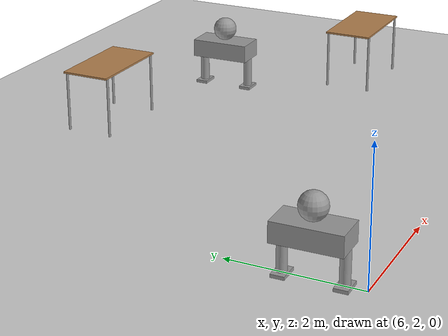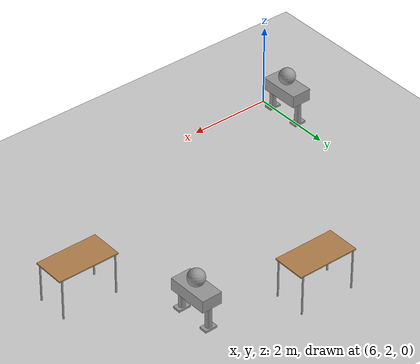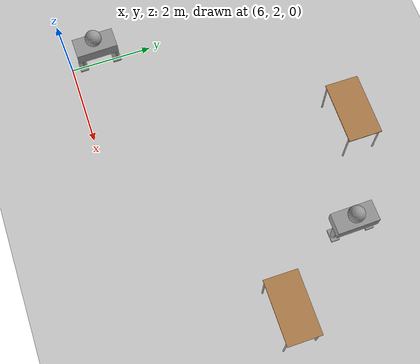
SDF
<sdf version="1.6">
 <world name="default">
  <model name="ground_plane">
   <static>1</static>
   <link name="link">
    <collision name="collision">
     <geometry><plane><normal>0 0 1</normal><size>100 100</size></plane></geometry>
     <surface>
      <contact><collide_bitmask>65535</collide_bitmask></contact>
      <friction><ode><mu>100</mu><mu2>50</mu2></ode></friction>
     </surface>
    </collision>
    <visual name="visual">
     <cast_shadows>0</cast_shadows>
     <geometry><plane><normal>0 0 1</normal><size>100 100</size></plane></geometry>
     <material>
      <script><uri>file://media/materials/scripts/gazebo.material</uri><name>Gazebo/Grey</name></script>
     </material>
    </visual>
   </link>
  </model>
  <model name="robot">
   <link name="link_0">
    <pose>-0.425 -0.010043 -0.1 0 -0 0</pose>
    <inertial>
     <mass>1</mass>
     <inertia><ixx>0.145833</ixx><ixy>0</ixy><ixz>0</ixz><iyy>0.145833</iyy><iyz>0</iyz><izz>0.125</izz></inertia>
    </inertial>
    <visual name="visual">
     <geometry><cylinder><radius>0.075</radius><length>0.5</length></cylinder></geometry>
     <material>
      <lighting>1</lighting>
      <script><uri>file://media/materials/scripts/gazebo.material</uri><name>Gazebo/Grey</name></script>
      <shader type="pixel"><normal_map>__default__</normal_map></shader>
      <ambient>0.3 0.3 0.3 1</ambient>
      <diffuse>0.7 0.7 0.7 1</diffuse>
      <specular>0.01 0.01 0.01 1</specular>
      <emissive>1 0.2 0.3 1</emissive>
     </material>
    </visual>
    <collision name="collision">
     <geometry><cylinder><radius>0.075</radius><length>0.5</length></cylinder></geometry>
     <surface>
      <friction>
       <ode><mu>1</mu><mu2>1</mu2><fdir1>0 0 0</fdir1><slip1>0</slip1><slip2>0</slip2></ode>
       <torsional>
        <coefficient>1</coefficient>
        <patch_radius>0</patch_radius>
        <surface_radius>0</surface_radius>
        <use_patch_radius>1</use_patch_radius>
        <ode><slip>0</slip></ode>
       </torsional>
      </friction>
      <bounce><restitution_coefficient>0</restitution_coefficient><threshold>1e+06</threshold></bounce>
      <contact>
       <collide_without_contact>0</collide_without_contact>
       <collide_without_contact_bitmask>1</collide_without_contact_bitmask>
       <collide_bitmask>1</collide_bitmask>
       <ode>
        <soft_cfm>0</soft_cfm>
        <soft_erp>0.2</soft_erp>
        <kp>1e+13</kp>
        <kd>1</kd>
        <max_vel>0.01</max_vel>
        <min_depth>0</min_depth>
       </ode>
       <bullet>
        <split_impulse>1</split_impulse>
        <split_impulse_penetration_threshold>-0.01</split_impulse_penetration_threshold>
        <soft_cfm>0</soft_cfm>
        <soft_erp>0.2</soft_erp>
        <kp>1e+13</kp>
        <kd>1</kd>
       </bullet>
      </contact>
     </surface>
    </collision>
   </link>
   <link name="link_0_clone">
    <pose>0.425 -0.012415 -0.1 0 -0 0</pose>
    <inertial>
     <mass>1</mass>
     <inertia><ixx>0.145833</ixx><ixy>0</ixy><ixz>0</ixz><iyy>0.145833</iyy><iyz>0</iyz><izz>0.125</izz></inertia>
    </inertial>
    <visual name="visual">
     <geometry><cylinder><radius>0.075</radius><length>0.5</length></cylinder></geometry>
     <material>
      <lighting>1</lighting>
      <script><uri>file://media/materials/scripts/gazebo.material</uri><name>Gazebo/Grey</name></script>
      <shader type="pixel"><normal_map>__default__</normal_map></shader>
      <ambient>0.3 0.3 0.3 1</ambient>
      <diffuse>0.7 0.7 0.7 1</diffuse>
      <specular>0.01 0.01 0.01 1</specular>
      <emissive>1 0.2 0.3 1</emissive>
     </material>
    </visual>
    <collision name="collision">
     <geometry><cylinder><radius>0.075</radius><length>0.5</length></cylinder></geometry>
     <surface>
      <friction>
       <ode><mu>1</mu><mu2>1</mu2><fdir1>0 0 0</fdir1><slip1>0</slip1><slip2>0</slip2></ode>
       <torsional>
        <coefficient>1</coefficient>
        <patch_radius>0</patch_radius>
        <surface_radius>0</surface_radius>
        <use_patch_radius>1</use_patch_radius>
        <ode><slip>0</slip></ode>
       </torsional>
      </friction>
      <bounce><restitution_coefficient>0</restitution_coefficient><threshold>1e+06</threshold></bounce>
      <contact>
       <collide_without_contact>0</collide_without_contact>
       <collide_without_contact_bitmask>1</collide_without_contact_bitmask>
       <collide_bitmask>1</collide_bitmask>
       <ode>
        <soft_cfm>0</soft_cfm>
        <soft_erp>0.2</soft_erp>
        <kp>1e+13</kp>
        <kd>1</kd>
        <max_vel>0.01</max_vel>
        <min_depth>0</min_depth>
       </ode>
       <bullet>
        <split_impulse>1</split_impulse>
        <split_impulse_penetration_threshold>-0.01</split_impulse_penetration_threshold>
        <soft_cfm>0</soft_cfm>
        <soft_erp>0.2</soft_erp>
        <kp>1e+13</kp>
        <kd>1</kd>
       </bullet>
      </contact>
     </surface>
    </collision>
   </link>
   <link name="link_1">
    <pose>-0.425 -0.010043 -0.375 0 -0 0</pose>
    <inertial>
     <mass>1</mass>
     <inertia>
      <ixx>0.166667</ixx>
      <ixy>0</ixy>
      <ixz>0</ixz>
      <iyy>0.166667</iyy>
      <iyz>0</iyz>
      <izz>0.166667</izz>
     </inertia>
    </inertial>
    <visual name="visual">
     <geometry><box><size>0.2 0.3 0.05</size></box></geometry>
     <material>
      <lighting>1</lighting>
      <script><uri>file://media/materials/scripts/gazebo.material</uri><name>Gazebo/Grey</name></script>
      <shader type="pixel"><normal_map>__default__</normal_map></shader>
      <ambient>0.3 0.3 0.3 1</ambient>
      <diffuse>0.7 0.7 0.7 1</diffuse>
      <specular>0.01 0.01 0.01 1</specular>
      <emissive>0.2 1 0.2 1</emissive>
     </material>
    </visual>
    <collision name="collision">
     <geometry><box><size>0.2 0.3 0.05</size></box></geometry>
     <surface>
      <friction>
       <ode><mu>1</mu><mu2>1</mu2><fdir1>0 0 0</fdir1><slip1>0</slip1><slip2>0</slip2></ode>
       <torsional>
        <coefficient>1</coefficient>
        <patch_radius>0</patch_radius>
        <surface_radius>0</surface_radius>
        <use_patch_radius>1</use_patch_radius>
        <ode><slip>0</slip></ode>
       </torsional>
      </friction>
      <bounce><restitution_coefficient>0</restitution_coefficient><threshold>1e+06</threshold></bounce>
      <contact>
       <collide_without_contact>0</collide_without_contact>
       <collide_without_contact_bitmask>1</collide_without_contact_bitmask>
       <collide_bitmask>1</collide_bitmask>
       <ode>
        <soft_cfm>0</soft_cfm>
        <soft_erp>0.2</soft_erp>
        <kp>1e+13</kp>
        <kd>1</kd>
        <max_vel>0.01</max_vel>
        <min_depth>0</min_depth>
       </ode>
       <bullet>
        <split_impulse>1</split_impulse>
        <split_impulse_penetration_threshold>-0.01</split_impulse_penetration_threshold>
        <soft_cfm>0</soft_cfm>
        <soft_erp>0.2</soft_erp>
        <kp>1e+13</kp>
        <kd>1</kd>
       </bullet>
      </contact>
     </surface>
    </collision>
   </link>
   <link name="link_1_clone">
    <pose>0.425 -0.012415 -0.375 0 -0 0</pose>
    <inertial>
     <mass>1</mass>
     <inertia>
      <ixx>0.166667</ixx>
      <ixy>0</ixy>
      <ixz>0</ixz>
      <iyy>0.166667</iyy>
      <iyz>0</iyz>
      <izz>0.166667</izz>
     </inertia>
    </inertial>
    <visual name="visual">
     <geometry><box><size>0.2 0.3 0.05</size></box></geometry>
     <material>
      <lighting>1</lighting>
      <script><uri>file://media/materials/scripts/gazebo.material</uri><name>Gazebo/Grey</name></script>
      <shader type="pixel"><normal_map>__default__</normal_map></shader>
      <ambient>0.3 0.3 0.3 1</ambient>
      <diffuse>0.7 0.7 0.7 1</diffuse>
      <specular>0.01 0.01 0.01 1</specular>
      <emissive>0.2 1 0.2 1</emissive>
     </material>
    </visual>
    <collision name="collision">
     <geometry><box><size>0.2 0.3 0.05</size></box></geometry>
     <surface>
      <friction>
       <ode><mu>1</mu><mu2>1</mu2><fdir1>0 0 0</fdir1><slip1>0</slip1><slip2>0</slip2></ode>
       <torsional>
        <coefficient>1</coefficient>
        <patch_radius>0</patch_radius>
        <surface_radius>0</surface_radius>
        <use_patch_radius>1</use_patch_radius>
        <ode><slip>0</slip></ode>
       </torsional>
      </friction>
      <bounce><restitution_coefficient>0</restitution_coefficient><threshold>1e+06</threshold></bounce>
      <contact>
       <collide_without_contact>0</collide_without_contact>
       <collide_without_contact_bitmask>1</collide_without_contact_bitmask>
       <collide_bitmask>1</collide_bitmask>
       <ode>
        <soft_cfm>0</soft_cfm>
        <soft_erp>0.2</soft_erp>
        <kp>1e+13</kp>
        <kd>1</kd>
        <max_vel>0.01</max_vel>
        <min_depth>0</min_depth>
       </ode>
       <bullet>
        <split_impulse>1</split_impulse>
        <split_impulse_penetration_threshold>-0.01</split_impulse_penetration_threshold>
        <soft_cfm>0</soft_cfm>
        <soft_erp>0.2</soft_erp>
        <kp>1e+13</kp>
        <kd>1</kd>
       </bullet>
      </contact>
     </surface>
    </collision>
   </link>
   <link name="link_2">
    <pose>0 0.022457 0.3 0 -0 0</pose>
    <inertial>
     <mass>1</mass>
     <inertia>
      <ixx>0.166667</ixx>
      <ixy>0</ixy>
      <ixz>0</ixz>
      <iyy>0.166667</iyy>
      <iyz>0</iyz>
      <izz>0.166667</izz>
     </inertia>
    </inertial>
    <visual name="visual">
     <geometry><box><size>1 0.5 0.3</size></box></geometry>
     <material>
      <lighting>1</lighting>
      <script><uri>file://media/materials/scripts/gazebo.material</uri><name>Gazebo/Grey</name></script>
      <shader type="pixel"><normal_map>__default__</normal_map></shader>
      <ambient>0.3 0.3 0.3 1</ambient>
      <diffuse>0.7 0.7 0.7 1</diffuse>
      <specular>0.01 0.01 0.01 1</specular>
      <emissive>0.2 1 0.2 1</emissive>
     </material>
    </visual>
    <collision name="collision">
     <geometry><box><size>1 0.5 0.3</size></box></geometry>
     <surface>
      <friction>
       <ode><mu>1</mu><mu2>1</mu2><fdir1>0 0 0</fdir1><slip1>0</slip1><slip2>0</slip2></ode>
       <torsional>
        <coefficient>1</coefficient>
        <patch_radius>0</patch_radius>
        <surface_radius>0</surface_radius>
        <use_patch_radius>1</use_patch_radius>
        <ode><slip>0</slip></ode>
       </torsional>
      </friction>
      <bounce><restitution_coefficient>0</restitution_coefficient><threshold>1e+06</threshold></bounce>
      <contact>
       <collide_without_contact>0</collide_without_contact>
       <collide_without_contact_bitmask>1</collide_without_contact_bitmask>
       <collide_bitmask>1</collide_bitmask>
       <ode>
        <soft_cfm>0</soft_cfm>
        <soft_erp>0.2</soft_erp>
        <kp>1e+13</kp>
        <kd>1</kd>
        <max_vel>0.01</max_vel>
        <min_depth>0</min_depth>
       </ode>
       <bullet>
        <split_impulse>1</split_impulse>
        <split_impulse_penetration_threshold>-0.01</split_impulse_penetration_threshold>
        <soft_cfm>0</soft_cfm>
        <soft_erp>0.2</soft_erp>
        <kp>1e+13</kp>
        <kd>1</kd>
       </bullet>
      </contact>
     </surface>
    </collision>
   </link>
   <link name="link_3">
    <pose>-0 0.022457 0.65 0 -0 0</pose>
    <inertial>
     <mass>1</mass>
     <inertia><ixx>0.1</ixx><ixy>0</ixy><ixz>0</ixz><iyy>0.1</iyy><iyz>0</iyz><izz>0.1</izz></inertia>
    </inertial>
    <visual name="visual">
     <geometry><sphere><radius>0.2</radius></sphere></geometry>
     <material>
      <lighting>1</lighting>
      <script><uri>file://media/materials/scripts/gazebo.material</uri><name>Gazebo/Grey</name></script>
      <shader type="pixel"><normal_map>__default__</normal_map></shader>
      <ambient>0.3 0.3 0.3 1</ambient>
      <diffuse>0.7 0.7 0.7 1</diffuse>
      <specular>0.01 0.01 0.01 1</specular>
      <emissive>1 0.2 0.3 1</emissive>
     </material>
    </visual>
    <collision name="collision">
     <geometry><sphere><radius>0.2</radius></sphere></geometry>
     <surface>
      <friction>
       <ode><mu>1</mu><mu2>1</mu2><fdir1>0 0 0</fdir1><slip1>0</slip1><slip2>0</slip2></ode>
       <torsional>
        <coefficient>1</coefficient>
        <patch_radius>0</patch_radius>
        <surface_radius>0</surface_radius>
        <use_patch_radius>1</use_patch_radius>
        <ode><slip>0</slip></ode>
       </torsional>
      </friction>
      <bounce><restitution_coefficient>0</restitution_coefficient><threshold>1e+06</threshold></bounce>
      <contact>
       <collide_without_contact>0</collide_without_contact>
       <collide_without_contact_bitmask>1</collide_without_contact_bitmask>
       <collide_bitmask>1</collide_bitmask>
       <ode>
        <soft_cfm>0</soft_cfm>
        <soft_erp>0.2</soft_erp>
        <kp>1e+13</kp>
        <kd>1</kd>
        <max_vel>0.01</max_vel>
        <min_depth>0</min_depth>
       </ode>
       <bullet>
        <split_impulse>1</split_impulse>
        <split_impulse_penetration_threshold>-0.01</split_impulse_penetration_threshold>
        <soft_cfm>0</soft_cfm>
        <soft_erp>0.2</soft_erp>
        <kp>1e+13</kp>
        <kd>1</kd>
       </bullet>
      </contact>
     </surface>
    </collision>
   </link>
   <joint name="link_0_JOINT_2" type="fixed">
    <parent>link_0</parent>
    <child>link_2</child>
    <physics>
     <ode><limit><cfm>0</cfm><erp>0.2</erp></limit><suspension><cfm>0</cfm><erp>0.2</erp></suspension></ode>
    </physics>
   </joint>
   <joint name="link_0_clone_JOINT_6" type="revolute">
    <parent>link_0_clone</parent>
    <child>link_1_clone</child>
    <axis>
     <xyz>1 0 0</xyz>
     <use_parent_model_frame>0</use_parent_model_frame>
     <limit>
      <lower>-1.79769e+308</lower>
      <upper>1.79769e+308</upper>
      <effort>-1</effort>
      <velocity>-1</velocity>
     </limit>
     <dynamics>
      <spring_reference>0</spring_reference>
      <spring_stiffness>0</spring_stiffness>
      <damping>0</damping>
      <friction>0</friction>
     </dynamics>
    </axis>
    <physics>
     <ode><limit><cfm>0</cfm><erp>0.2</erp></limit><suspension><cfm>0</cfm><erp>0.2</erp></suspension></ode>
    </physics>
   </joint>
   <joint name="link_1_JOINT_0" type="fixed">
    <parent>link_1</parent>
    <child>link_0</child>
    <pose>0 0 -0.25 0 -0 0</pose>
    <physics>
     <ode><limit><cfm>0</cfm><erp>0.2</erp></limit><suspension><cfm>0</cfm><erp>0.2</erp></suspension></ode>
    </physics>
   </joint>
   <joint name="link_2_JOINT_5" type="fixed">
    <parent>link_2</parent>
    <child>link_0_clone</child>
    <physics>
     <ode><limit><cfm>0</cfm><erp>0.2</erp></limit><suspension><cfm>0</cfm><erp>0.2</erp></suspension></ode>
    </physics>
   </joint>
   <joint name="link_2_JOINT_7" type="fixed">
    <parent>link_2</parent>
    <child>link_3</child>
    <physics>
     <ode><limit><cfm>0</cfm><erp>0.2</erp></limit><suspension><cfm>0</cfm><erp>0.2</erp></suspension></ode>
    </physics>
   </joint>
   <static>0</static>
   <pose>5.94345 2.71776 0.4 -0 -1e-06 1.58896</pose>
  </model>
  <model name="robot_clone">
   <link name="link_0">
    <pose>-0.425 -0.010043 -0.1 0 -0 0</pose>
    <inertial>
     <mass>1</mass>
     <inertia><ixx>0.145833</ixx><ixy>0</ixy><ixz>0</ixz><iyy>0.145833</iyy><iyz>0</iyz><izz>0.125</izz></inertia>
    </inertial>
    <visual name="visual">
     <geometry><cylinder><radius>0.075</radius><length>0.5</length></cylinder></geometry>
     <material>
      <lighting>1</lighting>
      <script><uri>file://media/materials/scripts/gazebo.material</uri><name>Gazebo/Grey</name></script>
      <shader type="pixel"><normal_map>__default__</normal_map></shader>
      <ambient>0.3 0.3 0.3 1</ambient>
      <diffuse>0.7 0.7 0.7 1</diffuse>
      <specular>0.01 0.01 0.01 1</specular>
      <emissive>1 0.2 0.3 1</emissive>
     </material>
    </visual>
    <collision name="collision">
     <geometry><cylinder><radius>0.075</radius><length>0.5</length></cylinder></geometry>
     <surface>
      <friction>
       <ode><mu>1</mu><mu2>1</mu2><fdir1>0 0 0</fdir1><slip1>0</slip1><slip2>0</slip2></ode>
       <torsional>
        <coefficient>1</coefficient>
        <patch_radius>0</patch_radius>
        <surface_radius>0</surface_radius>
        <use_patch_radius>1</use_patch_radius>
        <ode><slip>0</slip></ode>
       </torsional>
      </friction>
      <bounce><restitution_coefficient>0</restitution_coefficient><threshold>1e+06</threshold></bounce>
      <contact>
       <collide_without_contact>0</collide_without_contact>
       <collide_without_contact_bitmask>1</collide_without_contact_bitmask>
       <collide_bitmask>1</collide_bitmask>
       <ode>
        <soft_cfm>0</soft_cfm>
        <soft_erp>0.2</soft_erp>
        <kp>1e+13</kp>
        <kd>1</kd>
        <max_vel>0.01</max_vel>
        <min_depth>0</min_depth>
       </ode>
       <bullet>
        <split_impulse>1</split_impulse>
        <split_impulse_penetration_threshold>-0.01</split_impulse_penetration_threshold>
        <soft_cfm>0</soft_cfm>
        <soft_erp>0.2</soft_erp>
        <kp>1e+13</kp>
        <kd>1</kd>
       </bullet>
      </contact>
     </surface>
    </collision>
   </link>
   <link name="link_0_clone">
    <pose>0.425 -0.012415 -0.1 0 -0 0</pose>
    <inertial>
     <mass>1</mass>
     <inertia><ixx>0.145833</ixx><ixy>0</ixy><ixz>0</ixz><iyy>0.145833</iyy><iyz>0</iyz><izz>0.125</izz></inertia>
    </inertial>
    <visual name="visual">
     <geometry><cylinder><radius>0.075</radius><length>0.5</length></cylinder></geometry>
     <material>
      <lighting>1</lighting>
      <script><uri>file://media/materials/scripts/gazebo.material</uri><name>Gazebo/Grey</name></script>
      <shader type="pixel"><normal_map>__default__</normal_map></shader>
      <ambient>0.3 0.3 0.3 1</ambient>
      <diffuse>0.7 0.7 0.7 1</diffuse>
      <specular>0.01 0.01 0.01 1</specular>
      <emissive>1 0.2 0.3 1</emissive>
     </material>
    </visual>
    <collision name="collision">
     <geometry><cylinder><radius>0.075</radius><length>0.5</length></cylinder></geometry>
     <surface>
      <friction>
       <ode><mu>1</mu><mu2>1</mu2><fdir1>0 0 0</fdir1><slip1>0</slip1><slip2>0</slip2></ode>
       <torsional>
        <coefficient>1</coefficient>
        <patch_radius>0</patch_radius>
        <surface_radius>0</surface_radius>
        <use_patch_radius>1</use_patch_radius>
        <ode><slip>0</slip></ode>
       </torsional>
      </friction>
      <bounce><restitution_coefficient>0</restitution_coefficient><threshold>1e+06</threshold></bounce>
      <contact>
       <collide_without_contact>0</collide_without_contact>
       <collide_without_contact_bitmask>1</collide_without_contact_bitmask>
       <collide_bitmask>1</collide_bitmask>
       <ode>
        <soft_cfm>0</soft_cfm>
        <soft_erp>0.2</soft_erp>
        <kp>1e+13</kp>
        <kd>1</kd>
        <max_vel>0.01</max_vel>
        <min_depth>0</min_depth>
       </ode>
       <bullet>
        <split_impulse>1</split_impulse>
        <split_impulse_penetration_threshold>-0.01</split_impulse_penetration_threshold>
        <soft_cfm>0</soft_cfm>
        <soft_erp>0.2</soft_erp>
        <kp>1e+13</kp>
        <kd>1</kd>
       </bullet>
      </contact>
     </surface>
    </collision>
   </link>
   <link name="link_1">
    <pose>-0.425 -0.010043 -0.375 0 -0 0</pose>
    <inertial>
     <mass>1</mass>
     <inertia>
      <ixx>0.166667</ixx>
      <ixy>0</ixy>
      <ixz>0</ixz>
      <iyy>0.166667</iyy>
      <iyz>0</iyz>
      <izz>0.166667</izz>
     </inertia>
    </inertial>
    <visual name="visual">
     <geometry><box><size>0.2 0.3 0.05</size></box></geometry>
     <material>
      <lighting>1</lighting>
      <script><uri>file://media/materials/scripts/gazebo.material</uri><name>Gazebo/Grey</name></script>
      <shader type="pixel"><normal_map>__default__</normal_map></shader>
      <ambient>0.3 0.3 0.3 1</ambient>
      <diffuse>0.7 0.7 0.7 1</diffuse>
      <specular>0.01 0.01 0.01 1</specular>
      <emissive>0.2 1 0.2 1</emissive>
     </material>
    </visual>
    <collision name="collision">
     <geometry><box><size>0.2 0.3 0.05</size></box></geometry>
     <surface>
      <friction>
       <ode><mu>1</mu><mu2>1</mu2><fdir1>0 0 0</fdir1><slip1>0</slip1><slip2>0</slip2></ode>
       <torsional>
        <coefficient>1</coefficient>
        <patch_radius>0</patch_radius>
        <surface_radius>0</surface_radius>
        <use_patch_radius>1</use_patch_radius>
        <ode><slip>0</slip></ode>
       </torsional>
      </friction>
      <bounce><restitution_coefficient>0</restitution_coefficient><threshold>1e+06</threshold></bounce>
      <contact>
       <collide_without_contact>0</collide_without_contact>
       <collide_without_contact_bitmask>1</collide_without_contact_bitmask>
       <collide_bitmask>1</collide_bitmask>
       <ode>
        <soft_cfm>0</soft_cfm>
        <soft_erp>0.2</soft_erp>
        <kp>1e+13</kp>
        <kd>1</kd>
        <max_vel>0.01</max_vel>
        <min_depth>0</min_depth>
       </ode>
       <bullet>
        <split_impulse>1</split_impulse>
        <split_impulse_penetration_threshold>-0.01</split_impulse_penetration_threshold>
        <soft_cfm>0</soft_cfm>
        <soft_erp>0.2</soft_erp>
        <kp>1e+13</kp>
        <kd>1</kd>
       </bullet>
      </contact>
     </surface>
    </collision>
   </link>
   <link name="link_1_clone">
    <pose>0.425 -0.012415 -0.375 0 -0 0</pose>
    <inertial>
     <mass>1</mass>
     <inertia>
      <ixx>0.166667</ixx>
      <ixy>0</ixy>
      <ixz>0</ixz>
      <iyy>0.166667</iyy>
      <iyz>0</iyz>
      <izz>0.166667</izz>
     </inertia>
    </inertial>
    <visual name="visual">
     <geometry><box><size>0.2 0.3 0.05</size></box></geometry>
     <material>
      <lighting>1</lighting>
      <script><uri>file://media/materials/scripts/gazebo.material</uri><name>Gazebo/Grey</name></script>
      <shader type="pixel"><normal_map>__default__</normal_map></shader>
      <ambient>0.3 0.3 0.3 1</ambient>
      <diffuse>0.7 0.7 0.7 1</diffuse>
      <specular>0.01 0.01 0.01 1</specular>
      <emissive>0.2 1 0.2 1</emissive>
     </material>
    </visual>
    <collision name="collision">
     <geometry><box><size>0.2 0.3 0.05</size></box></geometry>
     <surface>
      <friction>
       <ode><mu>1</mu><mu2>1</mu2><fdir1>0 0 0</fdir1><slip1>0</slip1><slip2>0</slip2></ode>
       <torsional>
        <coefficient>1</coefficient>
        <patch_radius>0</patch_radius>
        <surface_radius>0</surface_radius>
        <use_patch_radius>1</use_patch_radius>
        <ode><slip>0</slip></ode>
       </torsional>
      </friction>
      <bounce><restitution_coefficient>0</restitution_coefficient><threshold>1e+06</threshold></bounce>
      <contact>
       <collide_without_contact>0</collide_without_contact>
       <collide_without_contact_bitmask>1</collide_without_contact_bitmask>
       <collide_bitmask>1</collide_bitmask>
       <ode>
        <soft_cfm>0</soft_cfm>
        <soft_erp>0.2</soft_erp>
        <kp>1e+13</kp>
        <kd>1</kd>
        <max_vel>0.01</max_vel>
        <min_depth>0</min_depth>
       </ode>
       <bullet>
        <split_impulse>1</split_impulse>
        <split_impulse_penetration_threshold>-0.01</split_impulse_penetration_threshold>
        <soft_cfm>0</soft_cfm>
        <soft_erp>0.2</soft_erp>
        <kp>1e+13</kp>
        <kd>1</kd>
       </bullet>
      </contact>
     </surface>
    </collision>
   </link>
   <link name="link_2">
    <pose>0 0.022457 0.3 0 -0 0</pose>
    <inertial>
     <mass>1</mass>
     <inertia>
      <ixx>0.166667</ixx>
      <ixy>0</ixy>
      <ixz>0</ixz>
      <iyy>0.166667</iyy>
      <iyz>0</iyz>
      <izz>0.166667</izz>
     </inertia>
    </inertial>
    <visual name="visual">
     <geometry><box><size>1 0.5 0.3</size></box></geometry>
     <material>
      <lighting>1</lighting>
      <script><uri>file://media/materials/scripts/gazebo.material</uri><name>Gazebo/Grey</name></script>
      <shader type="pixel"><normal_map>__default__</normal_map></shader>
      <ambient>0.3 0.3 0.3 1</ambient>
      <diffuse>0.7 0.7 0.7 1</diffuse>
      <specular>0.01 0.01 0.01 1</specular>
      <emissive>0.2 1 0.2 1</emissive>
     </material>
    </visual>
    <collision name="collision">
     <geometry><box><size>1 0.5 0.3</size></box></geometry>
     <surface>
      <friction>
       <ode><mu>1</mu><mu2>1</mu2><fdir1>0 0 0</fdir1><slip1>0</slip1><slip2>0</slip2></ode>
       <torsional>
        <coefficient>1</coefficient>
        <patch_radius>0</patch_radius>
        <surface_radius>0</surface_radius>
        <use_patch_radius>1</use_patch_radius>
        <ode><slip>0</slip></ode>
       </torsional>
      </friction>
      <bounce><restitution_coefficient>0</restitution_coefficient><threshold>1e+06</threshold></bounce>
      <contact>
       <collide_without_contact>0</collide_without_contact>
       <collide_without_contact_bitmask>1</collide_without_contact_bitmask>
       <collide_bitmask>1</collide_bitmask>
       <ode>
        <soft_cfm>0</soft_cfm>
        <soft_erp>0.2</soft_erp>
        <kp>1e+13</kp>
        <kd>1</kd>
        <max_vel>0.01</max_vel>
        <min_depth>0</min_depth>
       </ode>
       <bullet>
        <split_impulse>1</split_impulse>
        <split_impulse_penetration_threshold>-0.01</split_impulse_penetration_threshold>
        <soft_cfm>0</soft_cfm>
        <soft_erp>0.2</soft_erp>
        <kp>1e+13</kp>
        <kd>1</kd>
       </bullet>
      </contact>
     </surface>
    </collision>
   </link>
   <link name="link_3">
    <pose>-0 0.022457 0.65 0 -0 0</pose>
    <inertial>
     <mass>1</mass>
     <inertia><ixx>0.1</ixx><ixy>0</ixy><ixz>0</ixz><iyy>0.1</iyy><iyz>0</iyz><izz>0.1</izz></inertia>
    </inertial>
    <visual name="visual">
     <geometry><sphere><radius>0.2</radius></sphere></geometry>
     <material>
      <lighting>1</lighting>
      <script><uri>file://media/materials/scripts/gazebo.material</uri><name>Gazebo/Grey</name></script>
      <shader type="pixel"><normal_map>__default__</normal_map></shader>
      <ambient>0.3 0.3 0.3 1</ambient>
      <diffuse>0.7 0.7 0.7 1</diffuse>
      <specular>0.01 0.01 0.01 1</specular>
      <emissive>1 0.2 0.3 1</emissive>
     </material>
    </visual>
    <collision name="collision">
     <geometry><sphere><radius>0.2</radius></sphere></geometry>
     <surface>
      <friction>
       <ode><mu>1</mu><mu2>1</mu2><fdir1>0 0 0</fdir1><slip1>0</slip1><slip2>0</slip2></ode>
       <torsional>
        <coefficient>1</coefficient>
        <patch_radius>0</patch_radius>
        <surface_radius>0</surface_radius>
        <use_patch_radius>1</use_patch_radius>
        <ode><slip>0</slip></ode>
       </torsional>
      </friction>
      <bounce><restitution_coefficient>0</restitution_coefficient><threshold>1e+06</threshold></bounce>
      <contact>
       <collide_without_contact>0</collide_without_contact>
       <collide_without_contact_bitmask>1</collide_without_contact_bitmask>
       <collide_bitmask>1</collide_bitmask>
       <ode>
        <soft_cfm>0</soft_cfm>
        <soft_erp>0.2</soft_erp>
        <kp>1e+13</kp>
        <kd>1</kd>
        <max_vel>0.01</max_vel>
        <min_depth>0</min_depth>
       </ode>
       <bullet>
        <split_impulse>1</split_impulse>
        <split_impulse_penetration_threshold>-0.01</split_impulse_penetration_threshold>
        <soft_cfm>0</soft_cfm>
        <soft_erp>0.2</soft_erp>
        <kp>1e+13</kp>
        <kd>1</kd>
       </bullet>
      </contact>
     </surface>
    </collision>
   </link>
   <joint name="link_0_JOINT_2" type="fixed">
    <parent>link_0</parent>
    <child>link_2</child>
    <physics>
     <ode><limit><cfm>0</cfm><erp>0.2</erp></limit><suspension><cfm>0</cfm><erp>0.2</erp></suspension></ode>
    </physics>
   </joint>
   <joint name="link_0_clone_JOINT_6" type="revolute">
    <parent>link_0_clone</parent>
    <child>link_1_clone</child>
    <axis>
     <xyz>1 0 0</xyz>
     <use_parent_model_frame>0</use_parent_model_frame>
     <limit>
      <lower>-1.79769e+308</lower>
      <upper>1.79769e+308</upper>
      <effort>-1</effort>
      <velocity>-1</velocity>
     </limit>
     <dynamics>
      <spring_reference>0</spring_reference>
      <spring_stiffness>0</spring_stiffness>
      <damping>0</damping>
      <friction>0</friction>
     </dynamics>
    </axis>
    <physics>
     <ode><limit><cfm>0</cfm><erp>0.2</erp></limit><suspension><cfm>0</cfm><erp>0.2</erp></suspension></ode>
    </physics>
   </joint>
   <joint name="link_1_JOINT_0" type="fixed">
    <parent>link_1</parent>
    <child>link_0</child>
    <pose>0 0 -0.25 0 -0 0</pose>
    <physics>
     <ode><limit><cfm>0</cfm><erp>0.2</erp></limit><suspension><cfm>0</cfm><erp>0.2</erp></suspension></ode>
    </physics>
   </joint>
   <joint name="link_2_JOINT_5" type="fixed">
    <parent>link_2</parent>
    <child>link_0_clone</child>
    <physics>
     <ode><limit><cfm>0</cfm><erp>0.2</erp></limit><suspension><cfm>0</cfm><erp>0.2</erp></suspension></ode>
    </physics>
   </joint>
   <joint name="link_2_JOINT_7" type="fixed">
    <parent>link_2</parent>
    <child>link_3</child>
    <physics>
     <ode><limit><cfm>0</cfm><erp>0.2</erp></limit><suspension><cfm>0</cfm><erp>0.2</erp></suspension></ode>
    </physics>
   </joint>
   <static>0</static>
   <pose>12.0656 7.01218 0.4 0 -1e-06 1.58894</pose>
  </model>
  <model name="table_0">
   <static>1</static>
   <link name="link">
    <collision name="surface">
     <pose>0 0 1 0 -0 0</pose>
     <geometry><box><size>1.5 0.8 0.03</size></box></geometry>
     <surface><friction><ode><mu>0.6</mu><mu2>0.6</mu2></ode></friction></surface>
    </collision>
    <visual name="visual1">
     <pose>0 0 1 0 -0 0</pose>
     <geometry><box><size>1.5 0.8 0.03</size></box></geometry>
     <material>
      <script><uri>file://media/materials/scripts/gazebo.material</uri><name>Gazebo/Wood</name></script>
     </material>
    </visual>
    <collision name="front_left_leg">
     <pose>0.68 0.38 0.5 0 -0 0</pose>
     <geometry><cylinder><radius>0.02</radius><length>1</length></cylinder></geometry>
    </collision>
    <visual name="front_left_leg">
     <pose>0.68 0.38 0.5 0 -0 0</pose>
     <geometry><cylinder><radius>0.02</radius><length>1</length></cylinder></geometry>
     <material>
      <script><uri>file://media/materials/scripts/gazebo.material</uri><name>Gazebo/Grey</name></script>
     </material>
    </visual>
    <collision name="front_right_leg">
     <pose>0.68 -0.38 0.5 0 -0 0</pose>
     <geometry><cylinder><radius>0.02</radius><length>1</length></cylinder></geometry>
    </collision>
    <visual name="front_right_leg">
     <pose>0.68 -0.38 0.5 0 -0 0</pose>
     <geometry><cylinder><radius>0.02</radius><length>1</length></cylinder></geometry>
     <material>
      <script><uri>file://media/materials/scripts/gazebo.material</uri><name>Gazebo/Grey</name></script>
     </material>
    </visual>
    <collision name="back_right_leg">
     <pose>-0.68 -0.38 0.5 0 -0 0</pose>
     <geometry><cylinder><radius>0.02</radius><length>1</length></cylinder></geometry>
    </collision>
    <visual name="back_right_leg">
     <pose>-0.68 -0.38 0.5 0 -0 0</pose>
     <geometry><cylinder><radius>0.02</radius><length>1</length></cylinder></geometry>
     <material>
      <script><uri>file://media/materials/scripts/gazebo.material</uri><name>Gazebo/Grey</name></script>
     </material>
    </visual>
    <collision name="back_left_leg">
     <pose>-0.68 0.38 0.5 0 -0 0</pose>
     <geometry><cylinder><radius>0.02</radius><length>1</length></cylinder></geometry>
    </collision>
    <visual name="back_left_leg">
     <pose>-0.68 0.38 0.5 0 -0 0</pose>
     <geometry><cylinder><radius>0.02</radius><length>1</length></cylinder></geometry>
     <material>
      <script><uri>file://media/materials/scripts/gazebo.material</uri><name>Gazebo/Grey</name></script>
     </material>
    </visual>
   </link>
   <pose>13.5119 4.96008 0 0 -0 0</pose>
  </model>
  <model name="table_1">
   <static>1</static>
   <link name="link">
    <collision name="surface">
     <pose>0 0 1 0 -0 0</pose>
     <geometry><box><size>1.5 0.8 0.03</size></box></geometry>
     <surface><friction><ode><mu>0.6</mu><mu2>0.6</mu2></ode></friction></surface>
    </collision>
    <visual name="visual1">
     <pose>0 0 1 0 -0 0</pose>
     <geometry><box><size>1.5 0.8 0.03</size></box></geometry>
     <material>
      <script><uri>file://media/materials/scripts/gazebo.material</uri><name>Gazebo/Wood</name></script>
     </material>
    </visual>
    <collision name="front_left_leg">
     <pose>0.68 0.38 0.5 0 -0 0</pose>
     <geometry><cylinder><radius>0.02</radius><length>1</length></cylinder></geometry>
    </collision>
    <visual name="front_left_leg">
     <pose>0.68 0.38 0.5 0 -0 0</pose>
     <geometry><cylinder><radius>0.02</radius><length>1</length></cylinder></geometry>
     <material>
      <script><uri>file://media/materials/scripts/gazebo.material</uri><name>Gazebo/Grey</name></script>
     </material>
    </visual>
    <collision name="front_right_leg">
     <pose>0.68 -0.38 0.5 0 -0 0</pose>
     <geometry><cylinder><radius>0.02</radius><length>1</length></cylinder></geometry>
    </collision>
    <visual name="front_right_leg">
     <pose>0.68 -0.38 0.5 0 -0 0</pose>
     <geometry><cylinder><radius>0.02</radius><length>1</length></cylinder></geometry>
     <material>
      <script><uri>file://media/materials/scripts/gazebo.material</uri><name>Gazebo/Grey</name></script>
     </material>
    </visual>
    <collision name="back_right_leg">
     <pose>-0.68 -0.38 0.5 0 -0 0</pose>
     <geometry><cylinder><radius>0.02</radius><length>1</length></cylinder></geometry>
    </collision>
    <visual name="back_right_leg">
     <pose>-0.68 -0.38 0.5 0 -0 0</pose>
     <geometry><cylinder><radius>0.02</radius><length>1</length></cylinder></geometry>
     <material>
      <script><uri>file://media/materials/scripts/gazebo.material</uri><name>Gazebo/Grey</name></script>
     </material>
    </visual>
    <collision name="back_left_leg">
     <pose>-0.68 0.38 0.5 0 -0 0</pose>
     <geometry><cylinder><radius>0.02</radius><length>1</length></cylinder></geometry>
    </collision>
    <visual name="back_left_leg">
     <pose>-0.68 0.38 0.5 0 -0 0</pose>
     <geometry><cylinder><radius>0.02</radius><length>1</length></cylinder></geometry>
     <material>
      <script><uri>file://media/materials/scripts/gazebo.material</uri><name>Gazebo/Grey</name></script>
     </material>
    </visual>
   </link>
   <pose>9.62391 7.92636 0 0 -0 0</pose>
  </model>
 </world>
</sdf>
